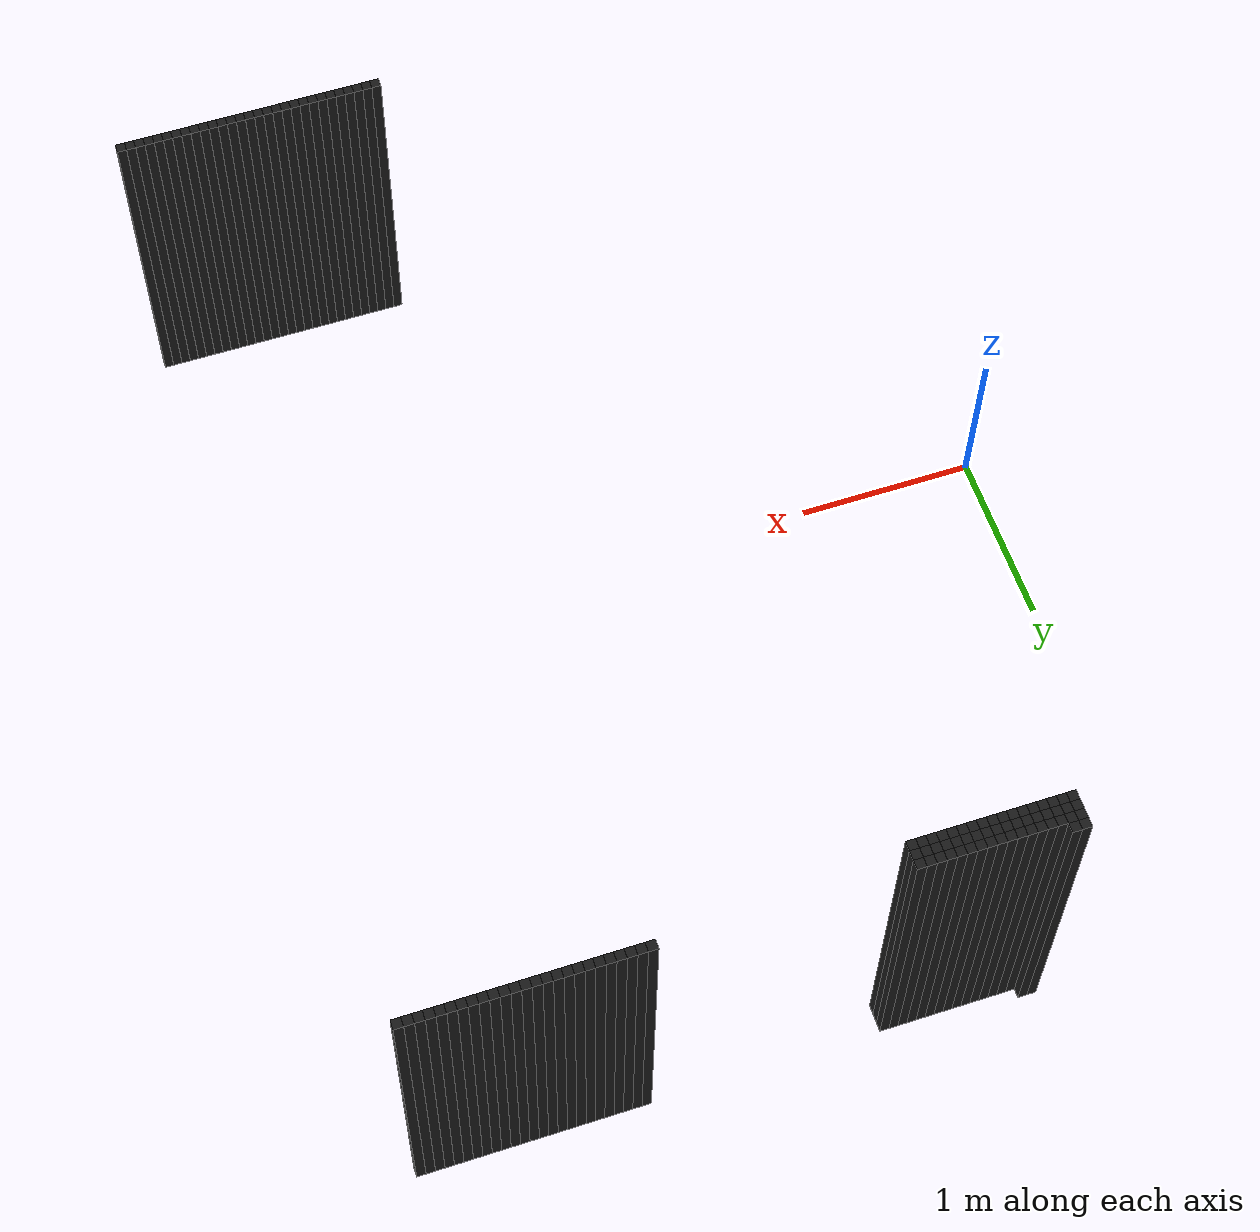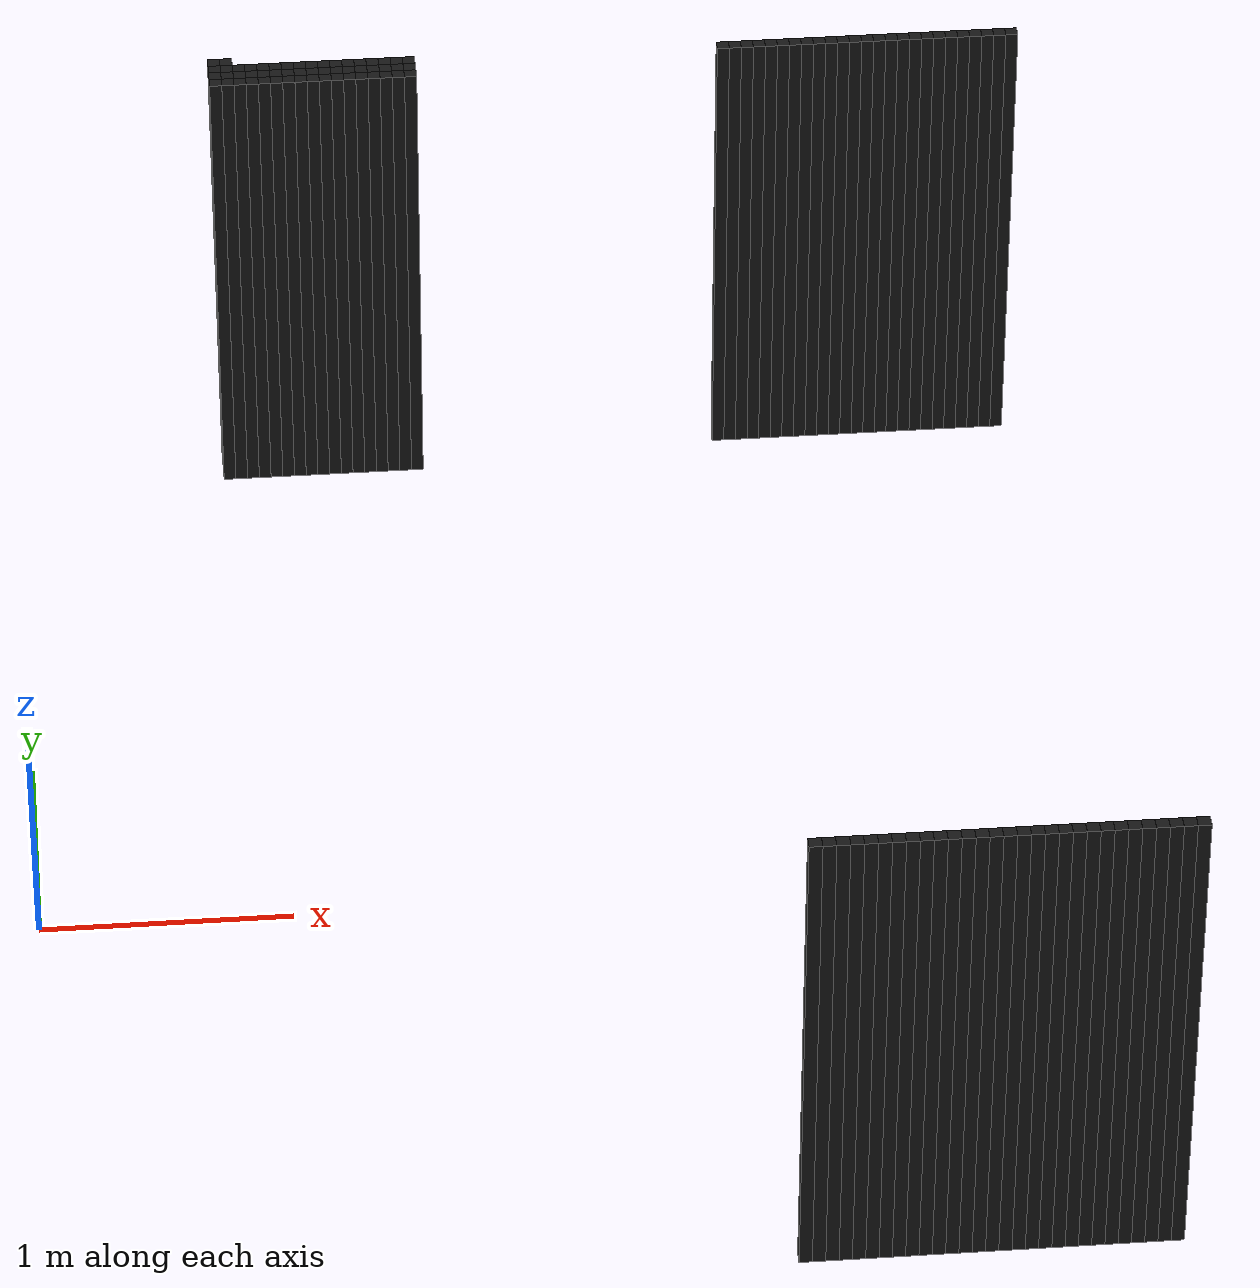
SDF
<sdf version="1.6">
 <model name="obstacle_108_105">
  <pose>0.8900000000000006 3.1000000000000005 1.0 0 0 0</pose>
  <static>true</static>
  <link name="box_link">
   <collision name="box_collision"><geometry><box><size>0.05 0.05 2.0</size></box></geometry></collision>
   <visual name="box_visual">
    <geometry><box><size>0.05 0.05 2.0</size></box></geometry>
    <material><ambient>0 0 0 1</ambient><diffuse>0.1 0.1 0.1 1</diffuse></material>
   </visual>
  </link>
 </model>
 <model name="obstacle_109_105">
  <pose>0.9400000000000004 3.1000000000000005 1.0 0 0 0</pose>
  <static>true</static>
  <link name="box_link">
   <collision name="box_collision"><geometry><box><size>0.05 0.05 2.0</size></box></geometry></collision>
   <visual name="box_visual">
    <geometry><box><size>0.05 0.05 2.0</size></box></geometry>
    <material><ambient>0 0 0 1</ambient><diffuse>0.1 0.1 0.1 1</diffuse></material>
   </visual>
  </link>
 </model>
 <model name="obstacle_108_106">
  <pose>0.8900000000000006 3.05 1.0 0 0 0</pose>
  <static>true</static>
  <link name="box_link">
   <collision name="box_collision"><geometry><box><size>0.05 0.05 2.0</size></box></geometry></collision>
   <visual name="box_visual">
    <geometry><box><size>0.05 0.05 2.0</size></box></geometry>
    <material><ambient>0 0 0 1</ambient><diffuse>0.1 0.1 0.1 1</diffuse></material>
   </visual>
  </link>
 </model>
 <model name="obstacle_109_106">
  <pose>0.9400000000000004 3.05 1.0 0 0 0</pose>
  <static>true</static>
  <link name="box_link">
   <collision name="box_collision"><geometry><box><size>0.05 0.05 2.0</size></box></geometry></collision>
   <visual name="box_visual">
    <geometry><box><size>0.05 0.05 2.0</size></box></geometry>
    <material><ambient>0 0 0 1</ambient><diffuse>0.1 0.1 0.1 1</diffuse></material>
   </visual>
  </link>
 </model>
 <model name="obstacle_110_106">
  <pose>0.9900000000000002 3.05 1.0 0 0 0</pose>
  <static>true</static>
  <link name="box_link">
   <collision name="box_collision"><geometry><box><size>0.05 0.05 2.0</size></box></geometry></collision>
   <visual name="box_visual">
    <geometry><box><size>0.05 0.05 2.0</size></box></geometry>
    <material><ambient>0 0 0 1</ambient><diffuse>0.1 0.1 0.1 1</diffuse></material>
   </visual>
  </link>
 </model>
 <model name="obstacle_111_106">
  <pose>1.040000000000001 3.05 1.0 0 0 0</pose>
  <static>true</static>
  <link name="box_link">
   <collision name="box_collision"><geometry><box><size>0.05 0.05 2.0</size></box></geometry></collision>
   <visual name="box_visual">
    <geometry><box><size>0.05 0.05 2.0</size></box></geometry>
    <material><ambient>0 0 0 1</ambient><diffuse>0.1 0.1 0.1 1</diffuse></material>
   </visual>
  </link>
 </model>
 <model name="obstacle_112_106">
  <pose>1.0900000000000007 3.05 1.0 0 0 0</pose>
  <static>true</static>
  <link name="box_link">
   <collision name="box_collision"><geometry><box><size>0.05 0.05 2.0</size></box></geometry></collision>
   <visual name="box_visual">
    <geometry><box><size>0.05 0.05 2.0</size></box></geometry>
    <material><ambient>0 0 0 1</ambient><diffuse>0.1 0.1 0.1 1</diffuse></material>
   </visual>
  </link>
 </model>
 <model name="obstacle_113_106">
  <pose>1.1400000000000006 3.05 1.0 0 0 0</pose>
  <static>true</static>
  <link name="box_link">
   <collision name="box_collision"><geometry><box><size>0.05 0.05 2.0</size></box></geometry></collision>
   <visual name="box_visual">
    <geometry><box><size>0.05 0.05 2.0</size></box></geometry>
    <material><ambient>0 0 0 1</ambient><diffuse>0.1 0.1 0.1 1</diffuse></material>
   </visual>
  </link>
 </model>
 <model name="obstacle_114_106">
  <pose>1.1900000000000004 3.05 1.0 0 0 0</pose>
  <static>true</static>
  <link name="box_link">
   <collision name="box_collision"><geometry><box><size>0.05 0.05 2.0</size></box></geometry></collision>
   <visual name="box_visual">
    <geometry><box><size>0.05 0.05 2.0</size></box></geometry>
    <material><ambient>0 0 0 1</ambient><diffuse>0.1 0.1 0.1 1</diffuse></material>
   </visual>
  </link>
 </model>
 <model name="obstacle_115_106">
  <pose>1.2400000000000002 3.05 1.0 0 0 0</pose>
  <static>true</static>
  <link name="box_link">
   <collision name="box_collision"><geometry><box><size>0.05 0.05 2.0</size></box></geometry></collision>
   <visual name="box_visual">
    <geometry><box><size>0.05 0.05 2.0</size></box></geometry>
    <material><ambient>0 0 0 1</ambient><diffuse>0.1 0.1 0.1 1</diffuse></material>
   </visual>
  </link>
 </model>
 <model name="obstacle_116_106">
  <pose>1.290000000000001 3.05 1.0 0 0 0</pose>
  <static>true</static>
  <link name="box_link">
   <collision name="box_collision"><geometry><box><size>0.05 0.05 2.0</size></box></geometry></collision>
   <visual name="box_visual">
    <geometry><box><size>0.05 0.05 2.0</size></box></geometry>
    <material><ambient>0 0 0 1</ambient><diffuse>0.1 0.1 0.1 1</diffuse></material>
   </visual>
  </link>
 </model>
 <model name="obstacle_117_106">
  <pose>1.3400000000000007 3.05 1.0 0 0 0</pose>
  <static>true</static>
  <link name="box_link">
   <collision name="box_collision"><geometry><box><size>0.05 0.05 2.0</size></box></geometry></collision>
   <visual name="box_visual">
    <geometry><box><size>0.05 0.05 2.0</size></box></geometry>
    <material><ambient>0 0 0 1</ambient><diffuse>0.1 0.1 0.1 1</diffuse></material>
   </visual>
  </link>
 </model>
 <model name="obstacle_118_106">
  <pose>1.3900000000000006 3.05 1.0 0 0 0</pose>
  <static>true</static>
  <link name="box_link">
   <collision name="box_collision"><geometry><box><size>0.05 0.05 2.0</size></box></geometry></collision>
   <visual name="box_visual">
    <geometry><box><size>0.05 0.05 2.0</size></box></geometry>
    <material><ambient>0 0 0 1</ambient><diffuse>0.1 0.1 0.1 1</diffuse></material>
   </visual>
  </link>
 </model>
 <model name="obstacle_119_106">
  <pose>1.4400000000000004 3.05 1.0 0 0 0</pose>
  <static>true</static>
  <link name="box_link">
   <collision name="box_collision"><geometry><box><size>0.05 0.05 2.0</size></box></geometry></collision>
   <visual name="box_visual">
    <geometry><box><size>0.05 0.05 2.0</size></box></geometry>
    <material><ambient>0 0 0 1</ambient><diffuse>0.1 0.1 0.1 1</diffuse></material>
   </visual>
  </link>
 </model>
 <model name="obstacle_120_106">
  <pose>1.4900000000000002 3.05 1.0 0 0 0</pose>
  <static>true</static>
  <link name="box_link">
   <collision name="box_collision"><geometry><box><size>0.05 0.05 2.0</size></box></geometry></collision>
   <visual name="box_visual">
    <geometry><box><size>0.05 0.05 2.0</size></box></geometry>
    <material><ambient>0 0 0 1</ambient><diffuse>0.1 0.1 0.1 1</diffuse></material>
   </visual>
  </link>
 </model>
 <model name="obstacle_121_106">
  <pose>1.540000000000001 3.05 1.0 0 0 0</pose>
  <static>true</static>
  <link name="box_link">
   <collision name="box_collision"><geometry><box><size>0.05 0.05 2.0</size></box></geometry></collision>
   <visual name="box_visual">
    <geometry><box><size>0.05 0.05 2.0</size></box></geometry>
    <material><ambient>0 0 0 1</ambient><diffuse>0.1 0.1 0.1 1</diffuse></material>
   </visual>
  </link>
 </model>
 <model name="obstacle_122_106">
  <pose>1.5900000000000007 3.05 1.0 0 0 0</pose>
  <static>true</static>
  <link name="box_link">
   <collision name="box_collision"><geometry><box><size>0.05 0.05 2.0</size></box></geometry></collision>
   <visual name="box_visual">
    <geometry><box><size>0.05 0.05 2.0</size></box></geometry>
    <material><ambient>0 0 0 1</ambient><diffuse>0.1 0.1 0.1 1</diffuse></material>
   </visual>
  </link>
 </model>
 <model name="obstacle_123_106">
  <pose>1.6400000000000006 3.05 1.0 0 0 0</pose>
  <static>true</static>
  <link name="box_link">
   <collision name="box_collision"><geometry><box><size>0.05 0.05 2.0</size></box></geometry></collision>
   <visual name="box_visual">
    <geometry><box><size>0.05 0.05 2.0</size></box></geometry>
    <material><ambient>0 0 0 1</ambient><diffuse>0.1 0.1 0.1 1</diffuse></material>
   </visual>
  </link>
 </model>
 <model name="obstacle_124_106">
  <pose>1.6900000000000004 3.05 1.0 0 0 0</pose>
  <static>true</static>
  <link name="box_link">
   <collision name="box_collision"><geometry><box><size>0.05 0.05 2.0</size></box></geometry></collision>
   <visual name="box_visual">
    <geometry><box><size>0.05 0.05 2.0</size></box></geometry>
    <material><ambient>0 0 0 1</ambient><diffuse>0.1 0.1 0.1 1</diffuse></material>
   </visual>
  </link>
 </model>
 <model name="obstacle_150_106">
  <pose>2.99 3.05 1.0 0 0 0</pose>
  <static>true</static>
  <link name="box_link">
   <collision name="box_collision"><geometry><box><size>0.05 0.05 2.0</size></box></geometry></collision>
   <visual name="box_visual">
    <geometry><box><size>0.05 0.05 2.0</size></box></geometry>
    <material><ambient>0 0 0 1</ambient><diffuse>0.1 0.1 0.1 1</diffuse></material>
   </visual>
  </link>
 </model>
 <model name="obstacle_151_106">
  <pose>3.040000000000001 3.05 1.0 0 0 0</pose>
  <static>true</static>
  <link name="box_link">
   <collision name="box_collision"><geometry><box><size>0.05 0.05 2.0</size></box></geometry></collision>
   <visual name="box_visual">
    <geometry><box><size>0.05 0.05 2.0</size></box></geometry>
    <material><ambient>0 0 0 1</ambient><diffuse>0.1 0.1 0.1 1</diffuse></material>
   </visual>
  </link>
 </model>
 <model name="obstacle_152_106">
  <pose>3.0900000000000007 3.05 1.0 0 0 0</pose>
  <static>true</static>
  <link name="box_link">
   <collision name="box_collision"><geometry><box><size>0.05 0.05 2.0</size></box></geometry></collision>
   <visual name="box_visual">
    <geometry><box><size>0.05 0.05 2.0</size></box></geometry>
    <material><ambient>0 0 0 1</ambient><diffuse>0.1 0.1 0.1 1</diffuse></material>
   </visual>
  </link>
 </model>
 <model name="obstacle_153_106">
  <pose>3.1400000000000006 3.05 1.0 0 0 0</pose>
  <static>true</static>
  <link name="box_link">
   <collision name="box_collision"><geometry><box><size>0.05 0.05 2.0</size></box></geometry></collision>
   <visual name="box_visual">
    <geometry><box><size>0.05 0.05 2.0</size></box></geometry>
    <material><ambient>0 0 0 1</ambient><diffuse>0.1 0.1 0.1 1</diffuse></material>
   </visual>
  </link>
 </model>
 <model name="obstacle_154_106">
  <pose>3.1900000000000004 3.05 1.0 0 0 0</pose>
  <static>true</static>
  <link name="box_link">
   <collision name="box_collision"><geometry><box><size>0.05 0.05 2.0</size></box></geometry></collision>
   <visual name="box_visual">
    <geometry><box><size>0.05 0.05 2.0</size></box></geometry>
    <material><ambient>0 0 0 1</ambient><diffuse>0.1 0.1 0.1 1</diffuse></material>
   </visual>
  </link>
 </model>
 <model name="obstacle_155_106">
  <pose>3.24 3.05 1.0 0 0 0</pose>
  <static>true</static>
  <link name="box_link">
   <collision name="box_collision"><geometry><box><size>0.05 0.05 2.0</size></box></geometry></collision>
   <visual name="box_visual">
    <geometry><box><size>0.05 0.05 2.0</size></box></geometry>
    <material><ambient>0 0 0 1</ambient><diffuse>0.1 0.1 0.1 1</diffuse></material>
   </visual>
  </link>
 </model>
 <model name="obstacle_156_106">
  <pose>3.290000000000001 3.05 1.0 0 0 0</pose>
  <static>true</static>
  <link name="box_link">
   <collision name="box_collision"><geometry><box><size>0.05 0.05 2.0</size></box></geometry></collision>
   <visual name="box_visual">
    <geometry><box><size>0.05 0.05 2.0</size></box></geometry>
    <material><ambient>0 0 0 1</ambient><diffuse>0.1 0.1 0.1 1</diffuse></material>
   </visual>
  </link>
 </model>
 <model name="obstacle_157_106">
  <pose>3.3400000000000007 3.05 1.0 0 0 0</pose>
  <static>true</static>
  <link name="box_link">
   <collision name="box_collision"><geometry><box><size>0.05 0.05 2.0</size></box></geometry></collision>
   <visual name="box_visual">
    <geometry><box><size>0.05 0.05 2.0</size></box></geometry>
    <material><ambient>0 0 0 1</ambient><diffuse>0.1 0.1 0.1 1</diffuse></material>
   </visual>
  </link>
 </model>
 <model name="obstacle_158_106">
  <pose>3.3900000000000006 3.05 1.0 0 0 0</pose>
  <static>true</static>
  <link name="box_link">
   <collision name="box_collision"><geometry><box><size>0.05 0.05 2.0</size></box></geometry></collision>
   <visual name="box_visual">
    <geometry><box><size>0.05 0.05 2.0</size></box></geometry>
    <material><ambient>0 0 0 1</ambient><diffuse>0.1 0.1 0.1 1</diffuse></material>
   </visual>
  </link>
 </model>
 <model name="obstacle_159_106">
  <pose>3.4400000000000004 3.05 1.0 0 0 0</pose>
  <static>true</static>
  <link name="box_link">
   <collision name="box_collision"><geometry><box><size>0.05 0.05 2.0</size></box></geometry></collision>
   <visual name="box_visual">
    <geometry><box><size>0.05 0.05 2.0</size></box></geometry>
    <material><ambient>0 0 0 1</ambient><diffuse>0.1 0.1 0.1 1</diffuse></material>
   </visual>
  </link>
 </model>
 <model name="obstacle_160_106">
  <pose>3.49 3.05 1.0 0 0 0</pose>
  <static>true</static>
  <link name="box_link">
   <collision name="box_collision"><geometry><box><size>0.05 0.05 2.0</size></box></geometry></collision>
   <visual name="box_visual">
    <geometry><box><size>0.05 0.05 2.0</size></box></geometry>
    <material><ambient>0 0 0 1</ambient><diffuse>0.1 0.1 0.1 1</diffuse></material>
   </visual>
  </link>
 </model>
 <model name="obstacle_161_106">
  <pose>3.540000000000001 3.05 1.0 0 0 0</pose>
  <static>true</static>
  <link name="box_link">
   <collision name="box_collision"><geometry><box><size>0.05 0.05 2.0</size></box></geometry></collision>
   <visual name="box_visual">
    <geometry><box><size>0.05 0.05 2.0</size></box></geometry>
    <material><ambient>0 0 0 1</ambient><diffuse>0.1 0.1 0.1 1</diffuse></material>
   </visual>
  </link>
 </model>
 <model name="obstacle_162_106">
  <pose>3.59 3.05 1.0 0 0 0</pose>
  <static>true</static>
  <link name="box_link">
   <collision name="box_collision"><geometry><box><size>0.05 0.05 2.0</size></box></geometry></collision>
   <visual name="box_visual">
    <geometry><box><size>0.05 0.05 2.0</size></box></geometry>
    <material><ambient>0 0 0 1</ambient><diffuse>0.1 0.1 0.1 1</diffuse></material>
   </visual>
  </link>
 </model>
 <model name="obstacle_163_106">
  <pose>3.6400000000000006 3.05 1.0 0 0 0</pose>
  <static>true</static>
  <link name="box_link">
   <collision name="box_collision"><geometry><box><size>0.05 0.05 2.0</size></box></geometry></collision>
   <visual name="box_visual">
    <geometry><box><size>0.05 0.05 2.0</size></box></geometry>
    <material><ambient>0 0 0 1</ambient><diffuse>0.1 0.1 0.1 1</diffuse></material>
   </visual>
  </link>
 </model>
 <model name="obstacle_164_106">
  <pose>3.6900000000000013 3.05 1.0 0 0 0</pose>
  <static>true</static>
  <link name="box_link">
   <collision name="box_collision"><geometry><box><size>0.05 0.05 2.0</size></box></geometry></collision>
   <visual name="box_visual">
    <geometry><box><size>0.05 0.05 2.0</size></box></geometry>
    <material><ambient>0 0 0 1</ambient><diffuse>0.1 0.1 0.1 1</diffuse></material>
   </visual>
  </link>
 </model>
 <model name="obstacle_165_106">
  <pose>3.74 3.05 1.0 0 0 0</pose>
  <static>true</static>
  <link name="box_link">
   <collision name="box_collision"><geometry><box><size>0.05 0.05 2.0</size></box></geometry></collision>
   <visual name="box_visual">
    <geometry><box><size>0.05 0.05 2.0</size></box></geometry>
    <material><ambient>0 0 0 1</ambient><diffuse>0.1 0.1 0.1 1</diffuse></material>
   </visual>
  </link>
 </model>
 <model name="obstacle_166_106">
  <pose>3.790000000000001 3.05 1.0 0 0 0</pose>
  <static>true</static>
  <link name="box_link">
   <collision name="box_collision"><geometry><box><size>0.05 0.05 2.0</size></box></geometry></collision>
   <visual name="box_visual">
    <geometry><box><size>0.05 0.05 2.0</size></box></geometry>
    <material><ambient>0 0 0 1</ambient><diffuse>0.1 0.1 0.1 1</diffuse></material>
   </visual>
  </link>
 </model>
 <model name="obstacle_167_106">
  <pose>3.84 3.05 1.0 0 0 0</pose>
  <static>true</static>
  <link name="box_link">
   <collision name="box_collision"><geometry><box><size>0.05 0.05 2.0</size></box></geometry></collision>
   <visual name="box_visual">
    <geometry><box><size>0.05 0.05 2.0</size></box></geometry>
    <material><ambient>0 0 0 1</ambient><diffuse>0.1 0.1 0.1 1</diffuse></material>
   </visual>
  </link>
 </model>
 <model name="obstacle_168_106">
  <pose>3.8900000000000006 3.05 1.0 0 0 0</pose>
  <static>true</static>
  <link name="box_link">
   <collision name="box_collision"><geometry><box><size>0.05 0.05 2.0</size></box></geometry></collision>
   <visual name="box_visual">
    <geometry><box><size>0.05 0.05 2.0</size></box></geometry>
    <material><ambient>0 0 0 1</ambient><diffuse>0.1 0.1 0.1 1</diffuse></material>
   </visual>
  </link>
 </model>
 <model name="obstacle_169_106">
  <pose>3.9400000000000013 3.05 1.0 0 0 0</pose>
  <static>true</static>
  <link name="box_link">
   <collision name="box_collision"><geometry><box><size>0.05 0.05 2.0</size></box></geometry></collision>
   <visual name="box_visual">
    <geometry><box><size>0.05 0.05 2.0</size></box></geometry>
    <material><ambient>0 0 0 1</ambient><diffuse>0.1 0.1 0.1 1</diffuse></material>
   </visual>
  </link>
 </model>
 <model name="obstacle_170_106">
  <pose>3.99 3.05 1.0 0 0 0</pose>
  <static>true</static>
  <link name="box_link">
   <collision name="box_collision"><geometry><box><size>0.05 0.05 2.0</size></box></geometry></collision>
   <visual name="box_visual">
    <geometry><box><size>0.05 0.05 2.0</size></box></geometry>
    <material><ambient>0 0 0 1</ambient><diffuse>0.1 0.1 0.1 1</diffuse></material>
   </visual>
  </link>
 </model>
 <model name="obstacle_171_106">
  <pose>4.040000000000001 3.05 1.0 0 0 0</pose>
  <static>true</static>
  <link name="box_link">
   <collision name="box_collision"><geometry><box><size>0.05 0.05 2.0</size></box></geometry></collision>
   <visual name="box_visual">
    <geometry><box><size>0.05 0.05 2.0</size></box></geometry>
    <material><ambient>0 0 0 1</ambient><diffuse>0.1 0.1 0.1 1</diffuse></material>
   </visual>
  </link>
 </model>
 <model name="obstacle_172_106">
  <pose>4.09 3.05 1.0 0 0 0</pose>
  <static>true</static>
  <link name="box_link">
   <collision name="box_collision"><geometry><box><size>0.05 0.05 2.0</size></box></geometry></collision>
   <visual name="box_visual">
    <geometry><box><size>0.05 0.05 2.0</size></box></geometry>
    <material><ambient>0 0 0 1</ambient><diffuse>0.1 0.1 0.1 1</diffuse></material>
   </visual>
  </link>
 </model>
 <model name="obstacle_173_106">
  <pose>4.140000000000001 3.05 1.0 0 0 0</pose>
  <static>true</static>
  <link name="box_link">
   <collision name="box_collision"><geometry><box><size>0.05 0.05 2.0</size></box></geometry></collision>
   <visual name="box_visual">
    <geometry><box><size>0.05 0.05 2.0</size></box></geometry>
    <material><ambient>0 0 0 1</ambient><diffuse>0.1 0.1 0.1 1</diffuse></material>
   </visual>
  </link>
 </model>
 <model name="obstacle_174_106">
  <pose>4.190000000000001 3.05 1.0 0 0 0</pose>
  <static>true</static>
  <link name="box_link">
   <collision name="box_collision"><geometry><box><size>0.05 0.05 2.0</size></box></geometry></collision>
   <visual name="box_visual">
    <geometry><box><size>0.05 0.05 2.0</size></box></geometry>
    <material><ambient>0 0 0 1</ambient><diffuse>0.1 0.1 0.1 1</diffuse></material>
   </visual>
  </link>
 </model>
 <model name="obstacle_108_107">
  <pose>0.8900000000000006 3.0 1.0 0 0 0</pose>
  <static>true</static>
  <link name="box_link">
   <collision name="box_collision"><geometry><box><size>0.05 0.05 2.0</size></box></geometry></collision>
   <visual name="box_visual">
    <geometry><box><size>0.05 0.05 2.0</size></box></geometry>
    <material><ambient>0 0 0 1</ambient><diffuse>0.1 0.1 0.1 1</diffuse></material>
   </visual>
  </link>
 </model>
 <model name="obstacle_109_107">
  <pose>0.9400000000000004 3.0 1.0 0 0 0</pose>
  <static>true</static>
  <link name="box_link">
   <collision name="box_collision"><geometry><box><size>0.05 0.05 2.0</size></box></geometry></collision>
   <visual name="box_visual">
    <geometry><box><size>0.05 0.05 2.0</size></box></geometry>
    <material><ambient>0 0 0 1</ambient><diffuse>0.1 0.1 0.1 1</diffuse></material>
   </visual>
  </link>
 </model>
 <model name="obstacle_110_107">
  <pose>0.9900000000000002 3.0 1.0 0 0 0</pose>
  <static>true</static>
  <link name="box_link">
   <collision name="box_collision"><geometry><box><size>0.05 0.05 2.0</size></box></geometry></collision>
   <visual name="box_visual">
    <geometry><box><size>0.05 0.05 2.0</size></box></geometry>
    <material><ambient>0 0 0 1</ambient><diffuse>0.1 0.1 0.1 1</diffuse></material>
   </visual>
  </link>
 </model>
 <model name="obstacle_111_107">
  <pose>1.040000000000001 3.0 1.0 0 0 0</pose>
  <static>true</static>
  <link name="box_link">
   <collision name="box_collision"><geometry><box><size>0.05 0.05 2.0</size></box></geometry></collision>
   <visual name="box_visual">
    <geometry><box><size>0.05 0.05 2.0</size></box></geometry>
    <material><ambient>0 0 0 1</ambient><diffuse>0.1 0.1 0.1 1</diffuse></material>
   </visual>
  </link>
 </model>
 <model name="obstacle_112_107">
  <pose>1.0900000000000007 3.0 1.0 0 0 0</pose>
  <static>true</static>
  <link name="box_link">
   <collision name="box_collision"><geometry><box><size>0.05 0.05 2.0</size></box></geometry></collision>
   <visual name="box_visual">
    <geometry><box><size>0.05 0.05 2.0</size></box></geometry>
    <material><ambient>0 0 0 1</ambient><diffuse>0.1 0.1 0.1 1</diffuse></material>
   </visual>
  </link>
 </model>
 <model name="obstacle_113_107">
  <pose>1.1400000000000006 3.0 1.0 0 0 0</pose>
  <static>true</static>
  <link name="box_link">
   <collision name="box_collision"><geometry><box><size>0.05 0.05 2.0</size></box></geometry></collision>
   <visual name="box_visual">
    <geometry><box><size>0.05 0.05 2.0</size></box></geometry>
    <material><ambient>0 0 0 1</ambient><diffuse>0.1 0.1 0.1 1</diffuse></material>
   </visual>
  </link>
 </model>
 <model name="obstacle_114_107">
  <pose>1.1900000000000004 3.0 1.0 0 0 0</pose>
  <static>true</static>
  <link name="box_link">
   <collision name="box_collision"><geometry><box><size>0.05 0.05 2.0</size></box></geometry></collision>
   <visual name="box_visual">
    <geometry><box><size>0.05 0.05 2.0</size></box></geometry>
    <material><ambient>0 0 0 1</ambient><diffuse>0.1 0.1 0.1 1</diffuse></material>
   </visual>
  </link>
 </model>
 <model name="obstacle_115_107">
  <pose>1.2400000000000002 3.0 1.0 0 0 0</pose>
  <static>true</static>
  <link name="box_link">
   <collision name="box_collision"><geometry><box><size>0.05 0.05 2.0</size></box></geometry></collision>
   <visual name="box_visual">
    <geometry><box><size>0.05 0.05 2.0</size></box></geometry>
    <material><ambient>0 0 0 1</ambient><diffuse>0.1 0.1 0.1 1</diffuse></material>
   </visual>
  </link>
 </model>
 <model name="obstacle_116_107">
  <pose>1.290000000000001 3.0 1.0 0 0 0</pose>
  <static>true</static>
  <link name="box_link">
   <collision name="box_collision"><geometry><box><size>0.05 0.05 2.0</size></box></geometry></collision>
   <visual name="box_visual">
    <geometry><box><size>0.05 0.05 2.0</size></box></geometry>
    <material><ambient>0 0 0 1</ambient><diffuse>0.1 0.1 0.1 1</diffuse></material>
   </visual>
  </link>
 </model>
 <model name="obstacle_117_107">
  <pose>1.3400000000000007 3.0 1.0 0 0 0</pose>
  <static>true</static>
  <link name="box_link">
   <collision name="box_collision"><geometry><box><size>0.05 0.05 2.0</size></box></geometry></collision>
   <visual name="box_visual">
    <geometry><box><size>0.05 0.05 2.0</size></box></geometry>
    <material><ambient>0 0 0 1</ambient><diffuse>0.1 0.1 0.1 1</diffuse></material>
   </visual>
  </link>
 </model>
 <model name="obstacle_118_107">
  <pose>1.3900000000000006 3.0 1.0 0 0 0</pose>
  <static>true</static>
  <link name="box_link">
   <collision name="box_collision"><geometry><box><size>0.05 0.05 2.0</size></box></geometry></collision>
   <visual name="box_visual">
    <geometry><box><size>0.05 0.05 2.0</size></box></geometry>
    <material><ambient>0 0 0 1</ambient><diffuse>0.1 0.1 0.1 1</diffuse></material>
   </visual>
  </link>
 </model>
 <model name="obstacle_119_107">
  <pose>1.4400000000000004 3.0 1.0 0 0 0</pose>
  <static>true</static>
  <link name="box_link">
   <collision name="box_collision"><geometry><box><size>0.05 0.05 2.0</size></box></geometry></collision>
   <visual name="box_visual">
    <geometry><box><size>0.05 0.05 2.0</size></box></geometry>
    <material><ambient>0 0 0 1</ambient><diffuse>0.1 0.1 0.1 1</diffuse></material>
   </visual>
  </link>
 </model>
 <model name="obstacle_120_107">
  <pose>1.4900000000000002 3.0 1.0 0 0 0</pose>
  <static>true</static>
  <link name="box_link">
   <collision name="box_collision"><geometry><box><size>0.05 0.05 2.0</size></box></geometry></collision>
   <visual name="box_visual">
    <geometry><box><size>0.05 0.05 2.0</size></box></geometry>
    <material><ambient>0 0 0 1</ambient><diffuse>0.1 0.1 0.1 1</diffuse></material>
   </visual>
  </link>
 </model>
 <model name="obstacle_121_107">
  <pose>1.540000000000001 3.0 1.0 0 0 0</pose>
  <static>true</static>
  <link name="box_link">
   <collision name="box_collision"><geometry><box><size>0.05 0.05 2.0</size></box></geometry></collision>
   <visual name="box_visual">
    <geometry><box><size>0.05 0.05 2.0</size></box></geometry>
    <material><ambient>0 0 0 1</ambient><diffuse>0.1 0.1 0.1 1</diffuse></material>
   </visual>
  </link>
 </model>
 <model name="obstacle_122_107">
  <pose>1.5900000000000007 3.0 1.0 0 0 0</pose>
  <static>true</static>
  <link name="box_link">
   <collision name="box_collision"><geometry><box><size>0.05 0.05 2.0</size></box></geometry></collision>
   <visual name="box_visual">
    <geometry><box><size>0.05 0.05 2.0</size></box></geometry>
    <material><ambient>0 0 0 1</ambient><diffuse>0.1 0.1 0.1 1</diffuse></material>
   </visual>
  </link>
 </model>
 <model name="obstacle_123_107">
  <pose>1.6400000000000006 3.0 1.0 0 0 0</pose>
  <static>true</static>
  <link name="box_link">
   <collision name="box_collision"><geometry><box><size>0.05 0.05 2.0</size></box></geometry></collision>
   <visual name="box_visual">
    <geometry><box><size>0.05 0.05 2.0</size></box></geometry>
    <material><ambient>0 0 0 1</ambient><diffuse>0.1 0.1 0.1 1</diffuse></material>
   </visual>
  </link>
 </model>
 <model name="obstacle_124_107">
  <pose>1.6900000000000004 3.0 1.0 0 0 0</pose>
  <static>true</static>
  <link name="box_link">
   <collision name="box_collision"><geometry><box><size>0.05 0.05 2.0</size></box></geometry></collision>
   <visual name="box_visual">
    <geometry><box><size>0.05 0.05 2.0</size></box></geometry>
    <material><ambient>0 0 0 1</ambient><diffuse>0.1 0.1 0.1 1</diffuse></material>
   </visual>
  </link>
 </model>
 <model name="obstacle_108_108">
  <pose>0.8900000000000006 2.95 1.0 0 0 0</pose>
  <static>true</static>
  <link name="box_link">
   <collision name="box_collision"><geometry><box><size>0.05 0.05 2.0</size></box></geometry></collision>
   <visual name="box_visual">
    <geometry><box><size>0.05 0.05 2.0</size></box></geometry>
    <material><ambient>0 0 0 1</ambient><diffuse>0.1 0.1 0.1 1</diffuse></material>
   </visual>
  </link>
 </model>
 <model name="obstacle_109_108">
  <pose>0.9400000000000004 2.95 1.0 0 0 0</pose>
  <static>true</static>
  <link name="box_link">
   <collision name="box_collision"><geometry><box><size>0.05 0.05 2.0</size></box></geometry></collision>
   <visual name="box_visual">
    <geometry><box><size>0.05 0.05 2.0</size></box></geometry>
    <material><ambient>0 0 0 1</ambient><diffuse>0.1 0.1 0.1 1</diffuse></material>
   </visual>
  </link>
 </model>
 <model name="obstacle_110_108">
  <pose>0.9900000000000002 2.95 1.0 0 0 0</pose>
  <static>true</static>
  <link name="box_link">
   <collision name="box_collision"><geometry><box><size>0.05 0.05 2.0</size></box></geometry></collision>
   <visual name="box_visual">
    <geometry><box><size>0.05 0.05 2.0</size></box></geometry>
    <material><ambient>0 0 0 1</ambient><diffuse>0.1 0.1 0.1 1</diffuse></material>
   </visual>
  </link>
 </model>
 <model name="obstacle_111_108">
  <pose>1.040000000000001 2.95 1.0 0 0 0</pose>
  <static>true</static>
  <link name="box_link">
   <collision name="box_collision"><geometry><box><size>0.05 0.05 2.0</size></box></geometry></collision>
   <visual name="box_visual">
    <geometry><box><size>0.05 0.05 2.0</size></box></geometry>
    <material><ambient>0 0 0 1</ambient><diffuse>0.1 0.1 0.1 1</diffuse></material>
   </visual>
  </link>
 </model>
 <model name="obstacle_112_108">
  <pose>1.0900000000000007 2.95 1.0 0 0 0</pose>
  <static>true</static>
  <link name="box_link">
   <collision name="box_collision"><geometry><box><size>0.05 0.05 2.0</size></box></geometry></collision>
   <visual name="box_visual">
    <geometry><box><size>0.05 0.05 2.0</size></box></geometry>
    <material><ambient>0 0 0 1</ambient><diffuse>0.1 0.1 0.1 1</diffuse></material>
   </visual>
  </link>
 </model>
 <model name="obstacle_113_108">
  <pose>1.1400000000000006 2.95 1.0 0 0 0</pose>
  <static>true</static>
  <link name="box_link">
   <collision name="box_collision"><geometry><box><size>0.05 0.05 2.0</size></box></geometry></collision>
   <visual name="box_visual">
    <geometry><box><size>0.05 0.05 2.0</size></box></geometry>
    <material><ambient>0 0 0 1</ambient><diffuse>0.1 0.1 0.1 1</diffuse></material>
   </visual>
  </link>
 </model>
 <model name="obstacle_114_108">
  <pose>1.1900000000000004 2.95 1.0 0 0 0</pose>
  <static>true</static>
  <link name="box_link">
   <collision name="box_collision"><geometry><box><size>0.05 0.05 2.0</size></box></geometry></collision>
   <visual name="box_visual">
    <geometry><box><size>0.05 0.05 2.0</size></box></geometry>
    <material><ambient>0 0 0 1</ambient><diffuse>0.1 0.1 0.1 1</diffuse></material>
   </visual>
  </link>
 </model>
 <model name="obstacle_115_108">
  <pose>1.2400000000000002 2.95 1.0 0 0 0</pose>
  <static>true</static>
  <link name="box_link">
   <collision name="box_collision"><geometry><box><size>0.05 0.05 2.0</size></box></geometry></collision>
   <visual name="box_visual">
    <geometry><box><size>0.05 0.05 2.0</size></box></geometry>
    <material><ambient>0 0 0 1</ambient><diffuse>0.1 0.1 0.1 1</diffuse></material>
   </visual>
  </link>
 </model>
 <model name="obstacle_116_108">
  <pose>1.290000000000001 2.95 1.0 0 0 0</pose>
  <static>true</static>
  <link name="box_link">
   <collision name="box_collision"><geometry><box><size>0.05 0.05 2.0</size></box></geometry></collision>
   <visual name="box_visual">
    <geometry><box><size>0.05 0.05 2.0</size></box></geometry>
    <material><ambient>0 0 0 1</ambient><diffuse>0.1 0.1 0.1 1</diffuse></material>
   </visual>
  </link>
 </model>
 <model name="obstacle_117_108">
  <pose>1.3400000000000007 2.95 1.0 0 0 0</pose>
  <static>true</static>
  <link name="box_link">
   <collision name="box_collision"><geometry><box><size>0.05 0.05 2.0</size></box></geometry></collision>
   <visual name="box_visual">
    <geometry><box><size>0.05 0.05 2.0</size></box></geometry>
    <material><ambient>0 0 0 1</ambient><diffuse>0.1 0.1 0.1 1</diffuse></material>
   </visual>
  </link>
 </model>
 <model name="obstacle_118_108">
  <pose>1.3900000000000006 2.95 1.0 0 0 0</pose>
  <static>true</static>
  <link name="box_link">
   <collision name="box_collision"><geometry><box><size>0.05 0.05 2.0</size></box></geometry></collision>
   <visual name="box_visual">
    <geometry><box><size>0.05 0.05 2.0</size></box></geometry>
    <material><ambient>0 0 0 1</ambient><diffuse>0.1 0.1 0.1 1</diffuse></material>
   </visual>
  </link>
 </model>
 <model name="obstacle_119_108">
  <pose>1.4400000000000004 2.95 1.0 0 0 0</pose>
  <static>true</static>
  <link name="box_link">
   <collision name="box_collision"><geometry><box><size>0.05 0.05 2.0</size></box></geometry></collision>
   <visual name="box_visual">
    <geometry><box><size>0.05 0.05 2.0</size></box></geometry>
    <material><ambient>0 0 0 1</ambient><diffuse>0.1 0.1 0.1 1</diffuse></material>
   </visual>
  </link>
 </model>
 <model name="obstacle_120_108">
  <pose>1.4900000000000002 2.95 1.0 0 0 0</pose>
  <static>true</static>
  <link name="box_link">
   <collision name="box_collision"><geometry><box><size>0.05 0.05 2.0</size></box></geometry></collision>
   <visual name="box_visual">
    <geometry><box><size>0.05 0.05 2.0</size></box></geometry>
    <material><ambient>0 0 0 1</ambient><diffuse>0.1 0.1 0.1 1</diffuse></material>
   </visual>
  </link>
 </model>
 <model name="obstacle_121_108">
  <pose>1.540000000000001 2.95 1.0 0 0 0</pose>
  <static>true</static>
  <link name="box_link">
   <collision name="box_collision"><geometry><box><size>0.05 0.05 2.0</size></box></geometry></collision>
   <visual name="box_visual">
    <geometry><box><size>0.05 0.05 2.0</size></box></geometry>
    <material><ambient>0 0 0 1</ambient><diffuse>0.1 0.1 0.1 1</diffuse></material>
   </visual>
  </link>
 </model>
 <model name="obstacle_122_108">
  <pose>1.5900000000000007 2.95 1.0 0 0 0</pose>
  <static>true</static>
  <link name="box_link">
   <collision name="box_collision"><geometry><box><size>0.05 0.05 2.0</size></box></geometry></collision>
   <visual name="box_visual">
    <geometry><box><size>0.05 0.05 2.0</size></box></geometry>
    <material><ambient>0 0 0 1</ambient><diffuse>0.1 0.1 0.1 1</diffuse></material>
   </visual>
  </link>
 </model>
 <model name="obstacle_123_108">
  <pose>1.6400000000000006 2.95 1.0 0 0 0</pose>
  <static>true</static>
  <link name="box_link">
   <collision name="box_collision"><geometry><box><size>0.05 0.05 2.0</size></box></geometry></collision>
   <visual name="box_visual">
    <geometry><box><size>0.05 0.05 2.0</size></box></geometry>
    <material><ambient>0 0 0 1</ambient><diffuse>0.1 0.1 0.1 1</diffuse></material>
   </visual>
  </link>
 </model>
 <model name="obstacle_124_108">
  <pose>1.6900000000000004 2.95 1.0 0 0 0</pose>
  <static>true</static>
  <link name="box_link">
   <collision name="box_collision"><geometry><box><size>0.05 0.05 2.0</size></box></geometry></collision>
   <visual name="box_visual">
    <geometry><box><size>0.05 0.05 2.0</size></box></geometry>
    <material><ambient>0 0 0 1</ambient><diffuse>0.1 0.1 0.1 1</diffuse></material>
   </visual>
  </link>
 </model>
 <model name="obstacle_146_210">
  <pose>2.790000000000001 -2.1500000000000004 1.0 0 0 0</pose>
  <static>true</static>
  <link name="box_link">
   <collision name="box_collision"><geometry><box><size>0.05 0.05 2.0</size></box></geometry></collision>
   <visual name="box_visual">
    <geometry><box><size>0.05 0.05 2.0</size></box></geometry>
    <material><ambient>0 0 0 1</ambient><diffuse>0.1 0.1 0.1 1</diffuse></material>
   </visual>
  </link>
 </model>
 <model name="obstacle_147_210">
  <pose>2.8400000000000007 -2.1500000000000004 1.0 0 0 0</pose>
  <static>true</static>
  <link name="box_link">
   <collision name="box_collision"><geometry><box><size>0.05 0.05 2.0</size></box></geometry></collision>
   <visual name="box_visual">
    <geometry><box><size>0.05 0.05 2.0</size></box></geometry>
    <material><ambient>0 0 0 1</ambient><diffuse>0.1 0.1 0.1 1</diffuse></material>
   </visual>
  </link>
 </model>
 <model name="obstacle_148_210">
  <pose>2.8900000000000006 -2.1500000000000004 1.0 0 0 0</pose>
  <static>true</static>
  <link name="box_link">
   <collision name="box_collision"><geometry><box><size>0.05 0.05 2.0</size></box></geometry></collision>
   <visual name="box_visual">
    <geometry><box><size>0.05 0.05 2.0</size></box></geometry>
    <material><ambient>0 0 0 1</ambient><diffuse>0.1 0.1 0.1 1</diffuse></material>
   </visual>
  </link>
 </model>
 <model name="obstacle_149_210">
  <pose>2.9400000000000004 -2.1500000000000004 1.0 0 0 0</pose>
  <static>true</static>
  <link name="box_link">
   <collision name="box_collision"><geometry><box><size>0.05 0.05 2.0</size></box></geometry></collision>
   <visual name="box_visual">
    <geometry><box><size>0.05 0.05 2.0</size></box></geometry>
    <material><ambient>0 0 0 1</ambient><diffuse>0.1 0.1 0.1 1</diffuse></material>
   </visual>
  </link>
 </model>
 <model name="obstacle_150_210">
  <pose>2.99 -2.1500000000000004 1.0 0 0 0</pose>
  <static>true</static>
  <link name="box_link">
   <collision name="box_collision"><geometry><box><size>0.05 0.05 2.0</size></box></geometry></collision>
   <visual name="box_visual">
    <geometry><box><size>0.05 0.05 2.0</size></box></geometry>
    <material><ambient>0 0 0 1</ambient><diffuse>0.1 0.1 0.1 1</diffuse></material>
   </visual>
  </link>
 </model>
 <model name="obstacle_151_210">
  <pose>3.040000000000001 -2.1500000000000004 1.0 0 0 0</pose>
  <static>true</static>
  <link name="box_link">
   <collision name="box_collision"><geometry><box><size>0.05 0.05 2.0</size></box></geometry></collision>
   <visual name="box_visual">
    <geometry><box><size>0.05 0.05 2.0</size></box></geometry>
    <material><ambient>0 0 0 1</ambient><diffuse>0.1 0.1 0.1 1</diffuse></material>
   </visual>
  </link>
 </model>
 <model name="obstacle_152_210">
  <pose>3.0900000000000007 -2.1500000000000004 1.0 0 0 0</pose>
  <static>true</static>
  <link name="box_link">
   <collision name="box_collision"><geometry><box><size>0.05 0.05 2.0</size></box></geometry></collision>
   <visual name="box_visual">
    <geometry><box><size>0.05 0.05 2.0</size></box></geometry>
    <material><ambient>0 0 0 1</ambient><diffuse>0.1 0.1 0.1 1</diffuse></material>
   </visual>
  </link>
 </model>
 <model name="obstacle_153_210">
  <pose>3.1400000000000006 -2.1500000000000004 1.0 0 0 0</pose>
  <static>true</static>
  <link name="box_link">
   <collision name="box_collision"><geometry><box><size>0.05 0.05 2.0</size></box></geometry></collision>
   <visual name="box_visual">
    <geometry><box><size>0.05 0.05 2.0</size></box></geometry>
    <material><ambient>0 0 0 1</ambient><diffuse>0.1 0.1 0.1 1</diffuse></material>
   </visual>
  </link>
 </model>
 <model name="obstacle_154_210">
  <pose>3.1900000000000004 -2.1500000000000004 1.0 0 0 0</pose>
  <static>true</static>
  <link name="box_link">
   <collision name="box_collision"><geometry><box><size>0.05 0.05 2.0</size></box></geometry></collision>
   <visual name="box_visual">
    <geometry><box><size>0.05 0.05 2.0</size></box></geometry>
    <material><ambient>0 0 0 1</ambient><diffuse>0.1 0.1 0.1 1</diffuse></material>
   </visual>
  </link>
 </model>
 <model name="obstacle_155_210">
  <pose>3.24 -2.1500000000000004 1.0 0 0 0</pose>
  <static>true</static>
  <link name="box_link">
   <collision name="box_collision"><geometry><box><size>0.05 0.05 2.0</size></box></geometry></collision>
   <visual name="box_visual">
    <geometry><box><size>0.05 0.05 2.0</size></box></geometry>
    <material><ambient>0 0 0 1</ambient><diffuse>0.1 0.1 0.1 1</diffuse></material>
   </visual>
  </link>
 </model>
 <model name="obstacle_156_210">
  <pose>3.290000000000001 -2.1500000000000004 1.0 0 0 0</pose>
  <static>true</static>
  <link name="box_link">
   <collision name="box_collision"><geometry><box><size>0.05 0.05 2.0</size></box></geometry></collision>
   <visual name="box_visual">
    <geometry><box><size>0.05 0.05 2.0</size></box></geometry>
    <material><ambient>0 0 0 1</ambient><diffuse>0.1 0.1 0.1 1</diffuse></material>
   </visual>
  </link>
 </model>
 <model name="obstacle_157_210">
  <pose>3.3400000000000007 -2.1500000000000004 1.0 0 0 0</pose>
  <static>true</static>
  <link name="box_link">
   <collision name="box_collision"><geometry><box><size>0.05 0.05 2.0</size></box></geometry></collision>
   <visual name="box_visual">
    <geometry><box><size>0.05 0.05 2.0</size></box></geometry>
    <material><ambient>0 0 0 1</ambient><diffuse>0.1 0.1 0.1 1</diffuse></material>
   </visual>
  </link>
 </model>
 <model name="obstacle_158_210">
  <pose>3.3900000000000006 -2.1500000000000004 1.0 0 0 0</pose>
  <static>true</static>
  <link name="box_link">
   <collision name="box_collision"><geometry><box><size>0.05 0.05 2.0</size></box></geometry></collision>
   <visual name="box_visual">
    <geometry><box><size>0.05 0.05 2.0</size></box></geometry>
    <material><ambient>0 0 0 1</ambient><diffuse>0.1 0.1 0.1 1</diffuse></material>
   </visual>
  </link>
 </model>
 <model name="obstacle_159_210">
  <pose>3.4400000000000004 -2.1500000000000004 1.0 0 0 0</pose>
  <static>true</static>
  <link name="box_link">
   <collision name="box_collision"><geometry><box><size>0.05 0.05 2.0</size></box></geometry></collision>
   <visual name="box_visual">
    <geometry><box><size>0.05 0.05 2.0</size></box></geometry>
    <material><ambient>0 0 0 1</ambient><diffuse>0.1 0.1 0.1 1</diffuse></material>
   </visual>
  </link>
 </model>
 <model name="obstacle_160_210">
  <pose>3.49 -2.1500000000000004 1.0 0 0 0</pose>
  <static>true</static>
  <link name="box_link">
   <collision name="box_collision"><geometry><box><size>0.05 0.05 2.0</size></box></geometry></collision>
   <visual name="box_visual">
    <geometry><box><size>0.05 0.05 2.0</size></box></geometry>
    <material><ambient>0 0 0 1</ambient><diffuse>0.1 0.1 0.1 1</diffuse></material>
   </visual>
  </link>
 </model>
 <model name="obstacle_161_210">
  <pose>3.540000000000001 -2.1500000000000004 1.0 0 0 0</pose>
  <static>true</static>
  <link name="box_link">
   <collision name="box_collision"><geometry><box><size>0.05 0.05 2.0</size></box></geometry></collision>
   <visual name="box_visual">
    <geometry><box><size>0.05 0.05 2.0</size></box></geometry>
    <material><ambient>0 0 0 1</ambient><diffuse>0.1 0.1 0.1 1</diffuse></material>
   </visual>
  </link>
 </model>
 <model name="obstacle_162_210">
  <pose>3.59 -2.1500000000000004 1.0 0 0 0</pose>
  <static>true</static>
  <link name="box_link">
   <collision name="box_collision"><geometry><box><size>0.05 0.05 2.0</size></box></geometry></collision>
   <visual name="box_visual">
    <geometry><box><size>0.05 0.05 2.0</size></box></geometry>
    <material><ambient>0 0 0 1</ambient><diffuse>0.1 0.1 0.1 1</diffuse></material>
   </visual>
  </link>
 </model>
 <model name="obstacle_163_210">
  <pose>3.6400000000000006 -2.1500000000000004 1.0 0 0 0</pose>
  <static>true</static>
  <link name="box_link">
   <collision name="box_collision"><geometry><box><size>0.05 0.05 2.0</size></box></geometry></collision>
   <visual name="box_visual">
    <geometry><box><size>0.05 0.05 2.0</size></box></geometry>
    <material><ambient>0 0 0 1</ambient><diffuse>0.1 0.1 0.1 1</diffuse></material>
   </visual>
  </link>
 </model>
 <model name="obstacle_164_210">
  <pose>3.6900000000000013 -2.1500000000000004 1.0 0 0 0</pose>
  <static>true</static>
  <link name="box_link">
   <collision name="box_collision"><geometry><box><size>0.05 0.05 2.0</size></box></geometry></collision>
   <visual name="box_visual">
    <geometry><box><size>0.05 0.05 2.0</size></box></geometry>
    <material><ambient>0 0 0 1</ambient><diffuse>0.1 0.1 0.1 1</diffuse></material>
   </visual>
  </link>
 </model>
 <model name="obstacle_165_210">
  <pose>3.74 -2.1500000000000004 1.0 0 0 0</pose>
  <static>true</static>
  <link name="box_link">
   <collision name="box_collision"><geometry><box><size>0.05 0.05 2.0</size></box></geometry></collision>
   <visual name="box_visual">
    <geometry><box><size>0.05 0.05 2.0</size></box></geometry>
    <material><ambient>0 0 0 1</ambient><diffuse>0.1 0.1 0.1 1</diffuse></material>
   </visual>
  </link>
 </model>
 <model name="obstacle_166_210">
  <pose>3.790000000000001 -2.1500000000000004 1.0 0 0 0</pose>
  <static>true</static>
  <link name="box_link">
   <collision name="box_collision"><geometry><box><size>0.05 0.05 2.0</size></box></geometry></collision>
   <visual name="box_visual">
    <geometry><box><size>0.05 0.05 2.0</size></box></geometry>
    <material><ambient>0 0 0 1</ambient><diffuse>0.1 0.1 0.1 1</diffuse></material>
   </visual>
  </link>
 </model>
 <model name="obstacle_167_210">
  <pose>3.84 -2.1500000000000004 1.0 0 0 0</pose>
  <static>true</static>
  <link name="box_link">
   <collision name="box_collision"><geometry><box><size>0.05 0.05 2.0</size></box></geometry></collision>
   <visual name="box_visual">
    <geometry><box><size>0.05 0.05 2.0</size></box></geometry>
    <material><ambient>0 0 0 1</ambient><diffuse>0.1 0.1 0.1 1</diffuse></material>
   </visual>
  </link>
 </model>
 <model name="obstacle_168_210">
  <pose>3.8900000000000006 -2.1500000000000004 1.0 0 0 0</pose>
  <static>true</static>
  <link name="box_link">
   <collision name="box_collision"><geometry><box><size>0.05 0.05 2.0</size></box></geometry></collision>
   <visual name="box_visual">
    <geometry><box><size>0.05 0.05 2.0</size></box></geometry>
    <material><ambient>0 0 0 1</ambient><diffuse>0.1 0.1 0.1 1</diffuse></material>
   </visual>
  </link>
 </model>
 <model name="obstacle_169_210">
  <pose>3.9400000000000013 -2.1500000000000004 1.0 0 0 0</pose>
  <static>true</static>
  <link name="box_link">
   <collision name="box_collision"><geometry><box><size>0.05 0.05 2.0</size></box></geometry></collision>
   <visual name="box_visual">
    <geometry><box><size>0.05 0.05 2.0</size></box></geometry>
    <material><ambient>0 0 0 1</ambient><diffuse>0.1 0.1 0.1 1</diffuse></material>
   </visual>
  </link>
 </model>
 <model name="obstacle_170_210">
  <pose>3.99 -2.1500000000000004 1.0 0 0 0</pose>
  <static>true</static>
  <link name="box_link">
   <collision name="box_collision"><geometry><box><size>0.05 0.05 2.0</size></box></geometry></collision>
   <visual name="box_visual">
    <geometry><box><size>0.05 0.05 2.0</size></box></geometry>
    <material><ambient>0 0 0 1</ambient><diffuse>0.1 0.1 0.1 1</diffuse></material>
   </visual>
  </link>
 </model>
 <model name="obstacle_171_210">
  <pose>4.040000000000001 -2.1500000000000004 1.0 0 0 0</pose>
  <static>true</static>
  <link name="box_link">
   <collision name="box_collision"><geometry><box><size>0.05 0.05 2.0</size></box></geometry></collision>
   <visual name="box_visual">
    <geometry><box><size>0.05 0.05 2.0</size></box></geometry>
    <material><ambient>0 0 0 1</ambient><diffuse>0.1 0.1 0.1 1</diffuse></material>
   </visual>
  </link>
 </model>
 <model name="obstacle_172_210">
  <pose>4.09 -2.1500000000000004 1.0 0 0 0</pose>
  <static>true</static>
  <link name="box_link">
   <collision name="box_collision"><geometry><box><size>0.05 0.05 2.0</size></box></geometry></collision>
   <visual name="box_visual">
    <geometry><box><size>0.05 0.05 2.0</size></box></geometry>
    <material><ambient>0 0 0 1</ambient><diffuse>0.1 0.1 0.1 1</diffuse></material>
   </visual>
  </link>
 </model>
 <model name="obstacle_173_210">
  <pose>4.140000000000001 -2.1500000000000004 1.0 0 0 0</pose>
  <static>true</static>
  <link name="box_link">
   <collision name="box_collision"><geometry><box><size>0.05 0.05 2.0</size></box></geometry></collision>
   <visual name="box_visual">
    <geometry><box><size>0.05 0.05 2.0</size></box></geometry>
    <material><ambient>0 0 0 1</ambient><diffuse>0.1 0.1 0.1 1</diffuse></material>
   </visual>
  </link>
 </model>
 <model name="obstacle_174_210">
  <pose>4.190000000000001 -2.1500000000000004 1.0 0 0 0</pose>
  <static>true</static>
  <link name="box_link">
   <collision name="box_collision"><geometry><box><size>0.05 0.05 2.0</size></box></geometry></collision>
   <visual name="box_visual">
    <geometry><box><size>0.05 0.05 2.0</size></box></geometry>
    <material><ambient>0 0 0 1</ambient><diffuse>0.1 0.1 0.1 1</diffuse></material>
   </visual>
  </link>
 </model>
</sdf>
